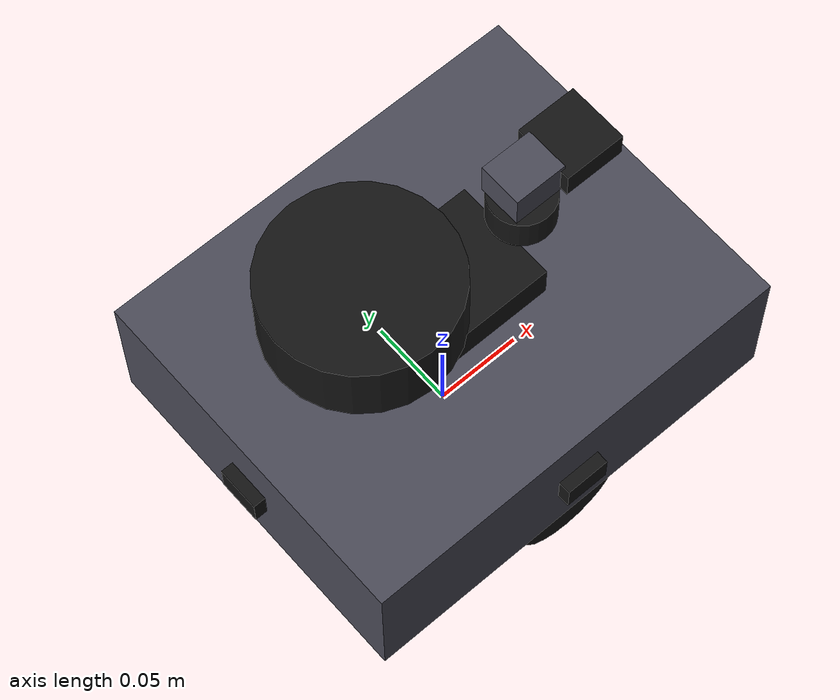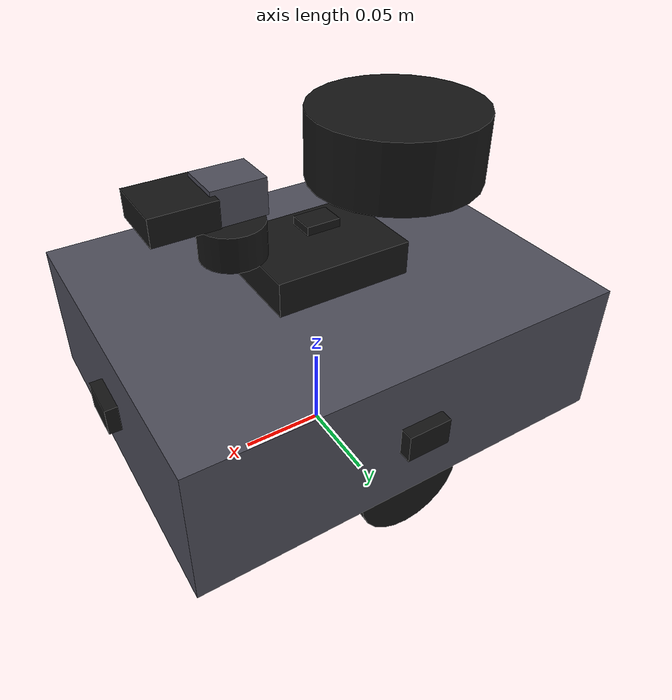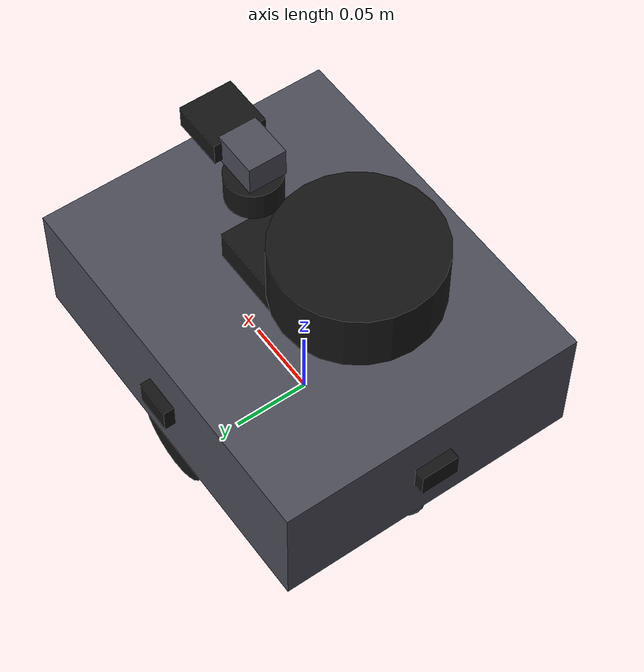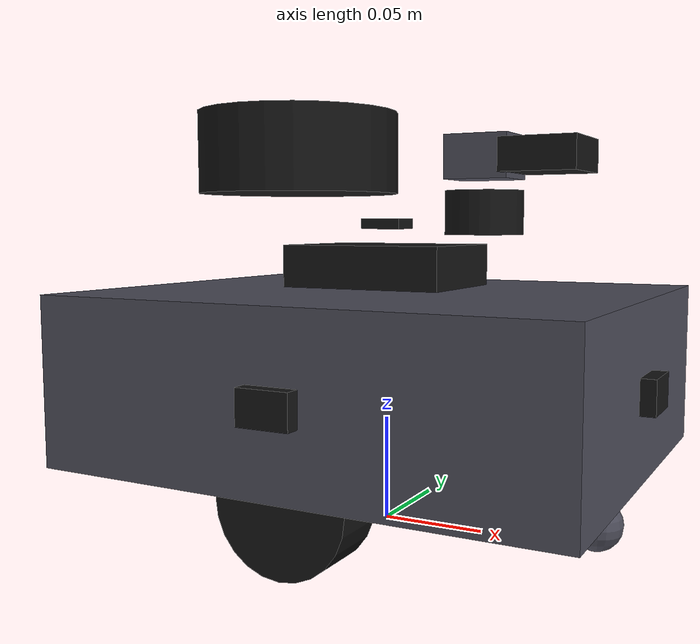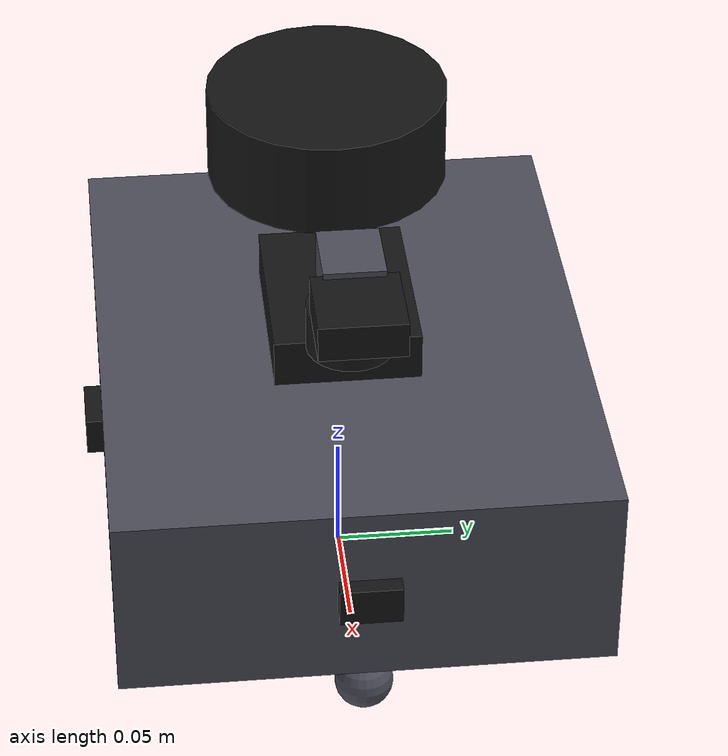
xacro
<?xml version="1.0"?>
<robot name="diff_chassis" xmlns:xacro="http://www.ros.org/wiki/xacro">
  <xacro:include
    filename="$(find air_ground_car_bringup)/urdf/car_base.urdf.xacro"/>

  <xacro:property name="wheel_radius" value="0.031"/>
  <xacro:property name="wheel_width" value="0.026"/>
  <xacro:property name="wheel_separation" value="0.166"/>
  <xacro:property name="wheel_mass" value="0.05"/>
  <xacro:property name="caster_radius" value="0.012"/>
  <xacro:property name="caster_mass" value="0.01"/>

  <xacro:macro name="drive_wheel" params="side y">
    <link name="${side}_wheel">
      <inertial>
        <mass value="${wheel_mass}"/>
        <inertia
          ixx="${wheel_mass * (3.0 * wheel_radius * wheel_radius + wheel_width * wheel_width) / 12.0}"
          ixy="0"
          ixz="0"
          iyy="${wheel_mass * (3.0 * wheel_radius * wheel_radius + wheel_width * wheel_width) / 12.0}"
          iyz="0"
          izz="${wheel_mass * wheel_radius * wheel_radius / 2.0}"/>
      </inertial>
      <visual>
        <geometry>
          <cylinder radius="${wheel_radius}" length="${wheel_width}"/>
        </geometry>
        <material name="car_black"/>
      </visual>
      <collision>
        <geometry>
          <cylinder radius="${wheel_radius}" length="${wheel_width}"/>
        </geometry>
      </collision>
    </link>

    <joint name="${side}_wheel_joint" type="continuous">
      <parent link="base_link"/>
      <child link="${side}_wheel"/>
      <origin xyz="0 ${y} ${wheel_radius}" rpy="${-pi / 2.0} 0 0"/>
      <axis xyz="0 0 1"/>
      <!-- 40 rad/s 覆盖供应资料 360±20 RPM 的空载公差上限（约 39.8 rad/s）。 -->
      <limit effort="5.0" velocity="40.0"/>
      <dynamics damping="0.02" friction="0.0"/>
    </joint>

    <transmission name="${side}_wheel_transmission">
      <type>transmission_interface/SimpleTransmission</type>
      <joint name="${side}_wheel_joint">
        <hardwareInterface>hardware_interface/VelocityJointInterface</hardwareInterface>
      </joint>
      <actuator name="${side}_wheel_motor">
        <hardwareInterface>hardware_interface/VelocityJointInterface</hardwareInterface>
        <mechanicalReduction>1</mechanicalReduction>
      </actuator>
    </transmission>

    <gazebo reference="${side}_wheel">
      <material>Gazebo/Black</material>
      <mu1>1.5</mu1>
      <mu2>1.5</mu2>
      <fdir1>1 0 0</fdir1>
      <kp>1000000</kp>
      <kd>10</kd>
    </gazebo>
  </xacro:macro>

  <xacro:macro name="ball_caster" params="name x">
    <link name="${name}_caster">
      <inertial>
        <mass value="${caster_mass}"/>
        <inertia
          ixx="${0.4 * caster_mass * caster_radius * caster_radius}"
          ixy="0"
          ixz="0"
          iyy="${0.4 * caster_mass * caster_radius * caster_radius}"
          iyz="0"
          izz="${0.4 * caster_mass * caster_radius * caster_radius}"/>
      </inertial>
      <visual>
        <geometry>
          <sphere radius="${caster_radius}"/>
        </geometry>
        <material name="car_gray"/>
      </visual>
      <collision>
        <geometry>
          <sphere radius="${caster_radius}"/>
        </geometry>
      </collision>
    </link>
    <joint name="${name}_caster_joint" type="fixed">
      <parent link="base_link"/>
      <child link="${name}_caster"/>
      <origin xyz="${x} 0 ${caster_radius}" rpy="0 0 0"/>
    </joint>
    <gazebo reference="${name}_caster">
      <material>Gazebo/Grey</material>
      <mu1>0.01</mu1>
      <mu2>0.01</mu2>
      <kp>1000000</kp>
      <kd>10</kd>
    </gazebo>
  </xacro:macro>

  <xacro:drive_wheel side="left" y="${wheel_separation / 2.0}"/>
  <xacro:drive_wheel side="right" y="${-wheel_separation / 2.0}"/>
  <xacro:ball_caster name="front" x="0.105"/>
  <xacro:ball_caster name="rear" x="-0.105"/>
</robot>

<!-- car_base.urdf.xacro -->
<robot name="car_base" xmlns:xacro="http://www.ros.org/wiki/xacro">
  <xacro:include
    filename="$(find air_ground_car_bringup)/urdf/car_sensors.urdf.xacro"/>

  <xacro:property name="body_length" value="0.25"/>
  <xacro:property name="body_width" value="0.20"/>
  <xacro:property name="body_height" value="0.08"/>
  <xacro:property name="body_center_z" value="0.073"/>
  <xacro:property name="body_mass" value="2.5"/>

  <material name="car_gray">
    <color rgba="0.30 0.30 0.35 1.0"/>
  </material>
  <material name="car_black">
    <color rgba="0.08 0.08 0.08 1.0"/>
  </material>

  <!-- The model origin lies on the ground below the chassis centre. -->
  <link name="base_link">
    <inertial>
      <origin xyz="0 0 ${body_center_z}" rpy="0 0 0"/>
      <mass value="${body_mass}"/>
      <inertia
        ixx="${body_mass * (body_width * body_width + body_height * body_height) / 12.0}"
        ixy="0"
        ixz="0"
        iyy="${body_mass * (body_length * body_length + body_height * body_height) / 12.0}"
        iyz="0"
        izz="${body_mass * (body_length * body_length + body_width * body_width) / 12.0}"/>
    </inertial>
    <visual>
      <origin xyz="0 0 ${body_center_z}" rpy="0 0 0"/>
      <geometry>
        <box size="${body_length} ${body_width} ${body_height}"/>
      </geometry>
      <material name="car_gray"/>
    </visual>
    <collision>
      <origin xyz="0 0 ${body_center_z}" rpy="0 0 0"/>
      <geometry>
        <box size="${body_length} ${body_width} ${body_height}"/>
      </geometry>
    </collision>
  </link>

  <link name="sensor_mount">
    <inertial>
      <mass value="0.1"/>
      <inertia ixx="0.000033" ixy="0" ixz="0"
               iyy="0.000057" iyz="0" izz="0.000083"/>
    </inertial>
    <visual>
      <geometry>
        <box size="0.08 0.06 0.02"/>
      </geometry>
      <material name="car_black"/>
    </visual>
  </link>
  <joint name="sensor_mount_joint" type="fixed">
    <parent link="base_link"/>
    <child link="sensor_mount"/>
    <origin xyz="0 0 0.125" rpy="0 0 0"/>
  </joint>

  <gazebo reference="base_link">
    <material>Gazebo/DarkGrey</material>
  </gazebo>
  <gazebo reference="sensor_mount">
    <material>Gazebo/Black</material>
  </gazebo>

  <xacro:car_sensor_suite
    base_link="base_link" mount_link="sensor_mount"/>

  <gazebo>
    <plugin name="gazebo_ros_control" filename="libgazebo_ros_control.so">
      <robotNamespace>/car</robotNamespace>
      <robotParam>/robot_description</robotParam>
    </plugin>
  </gazebo>
</robot>

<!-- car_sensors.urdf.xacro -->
<robot xmlns:xacro="http://www.ros.org/wiki/xacro">
  <xacro:macro name="car_sensor_suite" params="base_link mount_link">
    <!-- Two-axis OpenMV gimbal. -->
    <link name="gimbal_pan_link">
      <inertial>
        <mass value="0.03"/>
        <inertia ixx="0.000008" ixy="0" ixz="0"
                 iyy="0.000008" iyz="0" izz="0.000012"/>
      </inertial>
      <visual>
        <geometry>
          <cylinder radius="0.018" length="0.020"/>
        </geometry>
        <material name="car_black"/>
      </visual>
    </link>
    <joint name="gimbal_pan_joint" type="revolute">
      <parent link="${mount_link}"/>
      <child link="gimbal_pan_link"/>
      <origin xyz="0.05 0 0.025" rpy="0 0 0"/>
      <axis xyz="0 0 1"/>
      <limit lower="${-pi / 2.0}" upper="${pi / 2.0}"
             effort="0.5" velocity="3.0"/>
      <dynamics damping="0.02" friction="0.0"/>
    </joint>

    <link name="gimbal_tilt_link">
      <inertial>
        <mass value="0.02"/>
        <inertia ixx="0.000004" ixy="0" ixz="0"
                 iyy="0.000006" iyz="0" izz="0.000006"/>
      </inertial>
      <visual>
        <geometry>
          <box size="0.030 0.025 0.020"/>
        </geometry>
        <material name="car_gray"/>
      </visual>
    </link>
    <joint name="gimbal_tilt_joint" type="revolute">
      <parent link="gimbal_pan_link"/>
      <child link="gimbal_tilt_link"/>
      <origin xyz="0 0 0.025" rpy="0 0 0"/>
      <axis xyz="0 1 0"/>
      <limit lower="${-pi / 4.0}" upper="${pi / 4.0}"
             effort="0.3" velocity="2.0"/>
      <dynamics damping="0.02" friction="0.0"/>
    </joint>

    <link name="openmv_camera_link">
      <inertial>
        <mass value="0.02"/>
        <inertia ixx="0.000004" ixy="0" ixz="0"
                 iyy="0.000004" iyz="0" izz="0.000006"/>
      </inertial>
      <visual>
        <geometry>
          <box size="0.035 0.035 0.015"/>
        </geometry>
        <material name="car_black"/>
      </visual>
    </link>
    <joint name="openmv_camera_joint" type="fixed">
      <parent link="gimbal_tilt_link"/>
      <child link="openmv_camera_link"/>
      <origin xyz="0.030 0 0" rpy="0 0 0"/>
    </joint>

    <link name="openmv_camera_optical_link"/>
    <joint name="openmv_camera_optical_joint" type="fixed">
      <parent link="openmv_camera_link"/>
      <child link="openmv_camera_optical_link"/>
      <origin xyz="0 0 0" rpy="${-pi / 2.0} 0 ${-pi / 2.0}"/>
    </joint>

    <transmission name="gimbal_pan_transmission">
      <type>transmission_interface/SimpleTransmission</type>
      <joint name="gimbal_pan_joint">
        <hardwareInterface>hardware_interface/PositionJointInterface</hardwareInterface>
      </joint>
      <actuator name="gimbal_pan_motor">
        <hardwareInterface>hardware_interface/PositionJointInterface</hardwareInterface>
        <mechanicalReduction>1</mechanicalReduction>
      </actuator>
    </transmission>
    <transmission name="gimbal_tilt_transmission">
      <type>transmission_interface/SimpleTransmission</type>
      <joint name="gimbal_tilt_joint">
        <hardwareInterface>hardware_interface/PositionJointInterface</hardwareInterface>
      </joint>
      <actuator name="gimbal_tilt_motor">
        <hardwareInterface>hardware_interface/PositionJointInterface</hardwareInterface>
        <mechanicalReduction>1</mechanicalReduction>
      </actuator>
    </transmission>

    <link name="lidar_link">
      <inertial>
        <mass value="0.17"/>
        <inertia ixx="0.000115" ixy="0" ixz="0"
                 iyy="0.000115" iyz="0" izz="0.000213"/>
      </inertial>
      <visual>
        <geometry>
          <cylinder radius="0.05" length="0.04"/>
        </geometry>
        <material name="car_black"/>
      </visual>
    </link>
    <joint name="lidar_joint" type="fixed">
      <parent link="${mount_link}"/>
      <child link="lidar_link"/>
      <origin xyz="-0.05 0 0.055" rpy="0 0 0"/>
    </joint>

    <xacro:macro name="ultrasonic_mount" params="name x y yaw">
      <link name="ultrasonic_${name}_link">
        <inertial>
          <mass value="0.005"/>
          <inertia ixx="0.000001" ixy="0" ixz="0"
                   iyy="0.000001" iyz="0" izz="0.000001"/>
        </inertial>
        <visual>
          <geometry>
            <box size="0.012 0.025 0.016"/>
          </geometry>
          <material name="car_black"/>
        </visual>
      </link>
      <joint name="ultrasonic_${name}_joint" type="fixed">
        <parent link="${base_link}"/>
        <child link="ultrasonic_${name}_link"/>
        <origin xyz="${x} ${y} 0.073" rpy="0 0 ${yaw}"/>
      </joint>
    </xacro:macro>

    <xacro:ultrasonic_mount name="front" x="0.126" y="0" yaw="0"/>
    <xacro:ultrasonic_mount name="rear" x="-0.126" y="0" yaw="${pi}"/>
    <xacro:ultrasonic_mount name="left" x="0" y="0.101" yaw="${pi / 2.0}"/>
    <xacro:ultrasonic_mount name="right" x="0" y="-0.101" yaw="${-pi / 2.0}"/>

    <link name="imu_link">
      <inertial>
        <mass value="0.01"/>
        <inertia ixx="0.000001" ixy="0" ixz="0"
                 iyy="0.000001" iyz="0" izz="0.000001"/>
      </inertial>
      <visual>
        <geometry>
          <box size="0.020 0.015 0.005"/>
        </geometry>
        <material name="car_black"/>
      </visual>
    </link>
    <joint name="imu_joint" type="fixed">
      <parent link="${mount_link}"/>
      <child link="imu_link"/>
      <origin xyz="0 0 0.020" rpy="0 0 0"/>
    </joint>

    <gazebo reference="gimbal_pan_link">
      <material>Gazebo/Black</material>
    </gazebo>
    <gazebo reference="gimbal_tilt_link">
      <material>Gazebo/Grey</material>
    </gazebo>
    <gazebo reference="openmv_camera_link">
      <material>Gazebo/Black</material>
      <sensor name="openmv_camera" type="camera">
        <always_on>true</always_on>
        <visualize>false</visualize>
        <update_rate>10.0</update_rate>
        <camera>
          <horizontal_fov>1.134464</horizontal_fov>
          <image>
            <width>320</width>
            <height>240</height>
            <format>R8G8B8</format>
          </image>
          <clip>
            <near>0.05</near>
            <far>30.0</far>
          </clip>
          <noise>
            <type>gaussian</type>
            <mean>0.0</mean>
            <stddev>0.007</stddev>
          </noise>
        </camera>
        <plugin name="openmv_camera_plugin"
                filename="libgazebo_ros_camera.so">
          <robotNamespace>/car</robotNamespace>
          <alwaysOn>true</alwaysOn>
          <updateRate>0.0</updateRate>
          <cameraName>openmv</cameraName>
          <imageTopicName>image_raw</imageTopicName>
          <cameraInfoTopicName>camera_info</cameraInfoTopicName>
          <frameName>openmv_camera_optical_link</frameName>
          <hackBaseline>0.0</hackBaseline>
          <distortionK1>0.0</distortionK1>
          <distortionK2>0.0</distortionK2>
          <distortionK3>0.0</distortionK3>
          <distortionT1>0.0</distortionT1>
          <distortionT2>0.0</distortionT2>
        </plugin>
      </sensor>
    </gazebo>

    <gazebo reference="lidar_link">
      <material>Gazebo/Black</material>
      <sensor name="lidar_2d" type="ray">
        <always_on>true</always_on>
        <visualize>false</visualize>
        <update_rate>10.0</update_rate>
        <ray>
          <scan>
            <horizontal>
              <samples>360</samples>
              <resolution>1</resolution>
              <min_angle>${-pi}</min_angle>
              <max_angle>${pi}</max_angle>
            </horizontal>
          </scan>
          <range>
            <min>0.15</min>
            <max>12.0</max>
            <resolution>0.01</resolution>
          </range>
          <noise>
            <type>gaussian</type>
            <mean>0.0</mean>
            <stddev>0.015</stddev>
          </noise>
        </ray>
        <plugin name="lidar_plugin" filename="libgazebo_ros_laser.so">
          <robotNamespace>/car</robotNamespace>
          <alwaysOn>true</alwaysOn>
          <updateRate>0.0</updateRate>
          <topicName>scan</topicName>
          <frameName>lidar_link</frameName>
          <gaussianNoise>0.0</gaussianNoise>
        </plugin>
      </sensor>
    </gazebo>

    <xacro:macro name="ultrasonic_plugin" params="name">
      <gazebo reference="ultrasonic_${name}_link">
        <material>Gazebo/Black</material>
        <sensor name="ultrasonic_${name}" type="ray">
          <always_on>true</always_on>
          <visualize>false</visualize>
          <update_rate>25.0</update_rate>
          <ray>
            <scan>
              <horizontal>
                <samples>1</samples>
                <resolution>1</resolution>
                <min_angle>0</min_angle>
                <max_angle>0</max_angle>
              </horizontal>
            </scan>
            <range>
              <min>0.02</min>
              <max>4.0</max>
              <resolution>0.003</resolution>
            </range>
            <noise>
              <type>gaussian</type>
              <mean>0.0</mean>
              <stddev>0.003</stddev>
            </noise>
          </ray>
          <plugin name="ultrasonic_${name}_plugin"
                  filename="libgazebo_ros_laser.so">
            <robotNamespace>/car</robotNamespace>
            <alwaysOn>true</alwaysOn>
            <updateRate>0.0</updateRate>
            <topicName>ultrasonic/${name}</topicName>
            <frameName>ultrasonic_${name}_link</frameName>
            <gaussianNoise>0.0</gaussianNoise>
          </plugin>
        </sensor>
      </gazebo>
    </xacro:macro>

    <xacro:ultrasonic_plugin name="front"/>
    <xacro:ultrasonic_plugin name="rear"/>
    <xacro:ultrasonic_plugin name="left"/>
    <xacro:ultrasonic_plugin name="right"/>

    <gazebo reference="imu_link">
      <material>Gazebo/Black</material>
      <sensor name="car_imu" type="imu">
        <always_on>true</always_on>
        <visualize>false</visualize>
        <update_rate>30.0</update_rate>
        <imu>
          <angular_velocity>
            <x>
              <noise type="gaussian">
                <mean>0.0</mean>
                <stddev>0.0005</stddev>
              </noise>
            </x>
            <y>
              <noise type="gaussian">
                <mean>0.0</mean>
                <stddev>0.0005</stddev>
              </noise>
            </y>
            <z>
              <noise type="gaussian">
                <mean>0.0</mean>
                <stddev>0.0005</stddev>
              </noise>
            </z>
          </angular_velocity>
          <linear_acceleration>
            <x>
              <noise type="gaussian">
                <mean>0.0</mean>
                <stddev>0.001</stddev>
              </noise>
            </x>
            <y>
              <noise type="gaussian">
                <mean>0.0</mean>
                <stddev>0.001</stddev>
              </noise>
            </y>
            <z>
              <noise type="gaussian">
                <mean>0.0</mean>
                <stddev>0.001</stddev>
              </noise>
            </z>
          </linear_acceleration>
        </imu>
        <plugin name="car_imu_plugin"
                filename="libgazebo_ros_imu_sensor.so">
          <robotNamespace>/car</robotNamespace>
          <alwaysOn>true</alwaysOn>
          <updateRate>0.0</updateRate>
          <topicName>imu/data</topicName>
          <bodyName>imu_link</bodyName>
          <frameName>imu_link</frameName>
          <gaussianNoise>0.0</gaussianNoise>
        </plugin>
      </sensor>
    </gazebo>
  </xacro:macro>
</robot>
